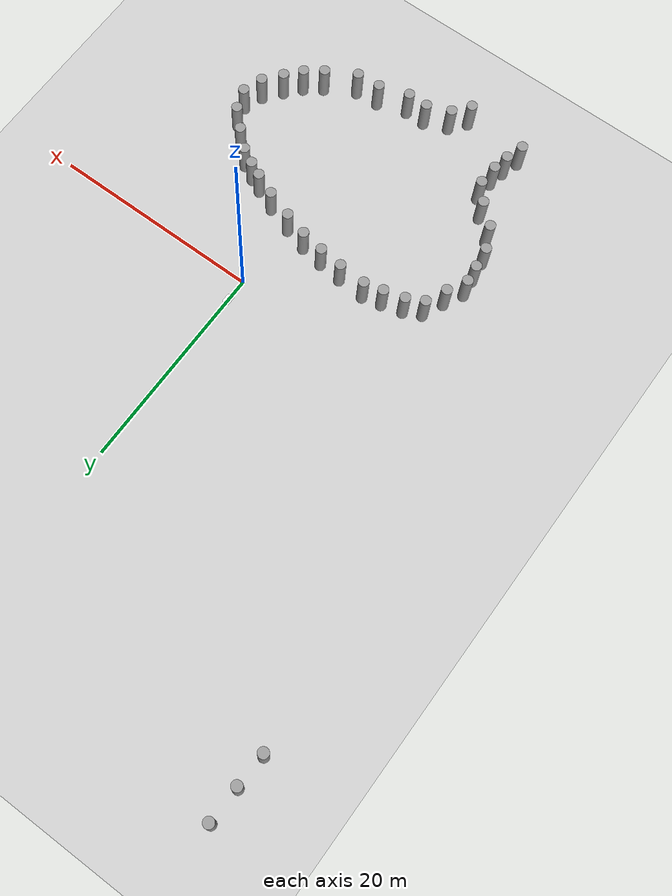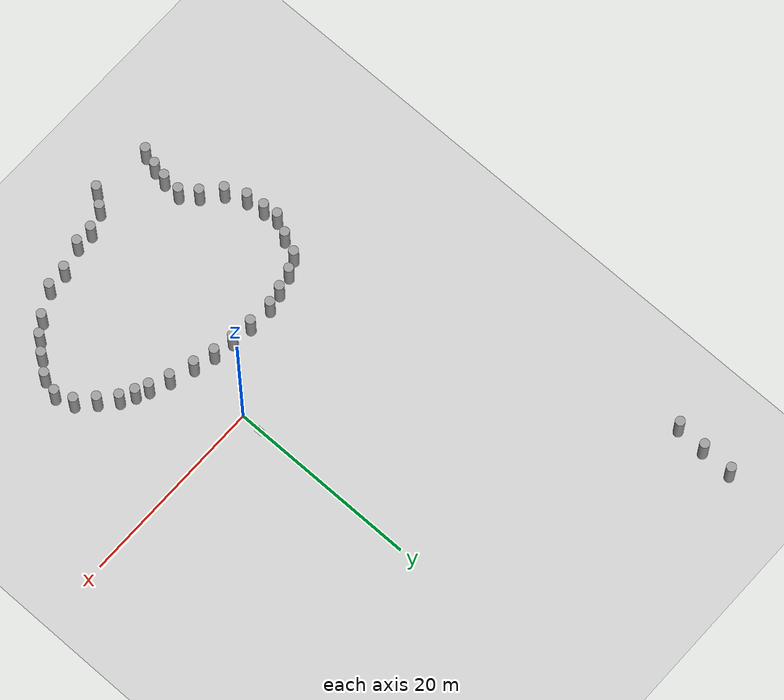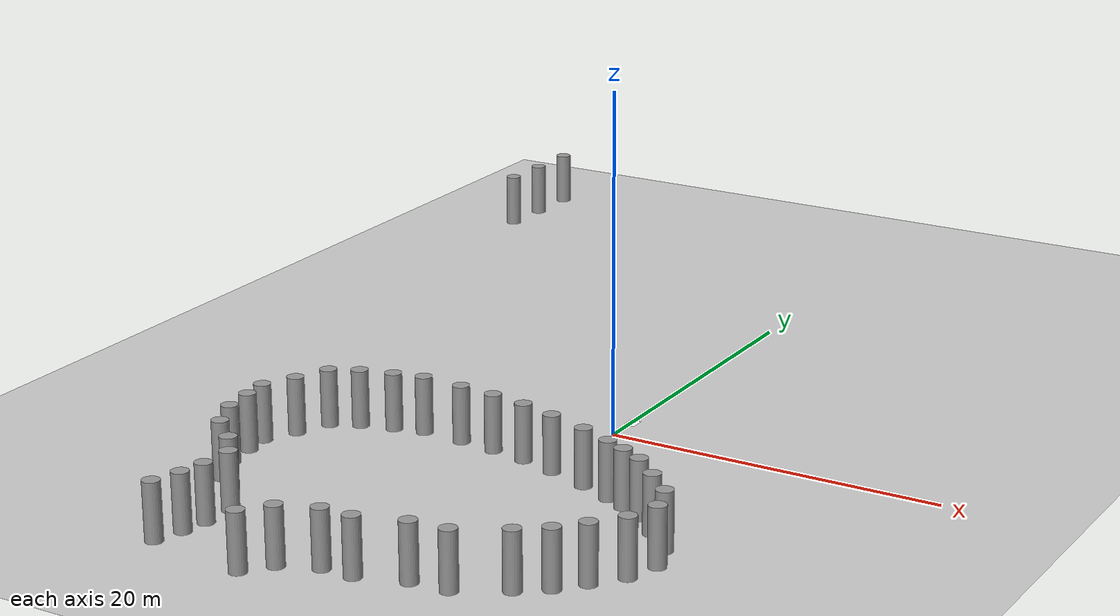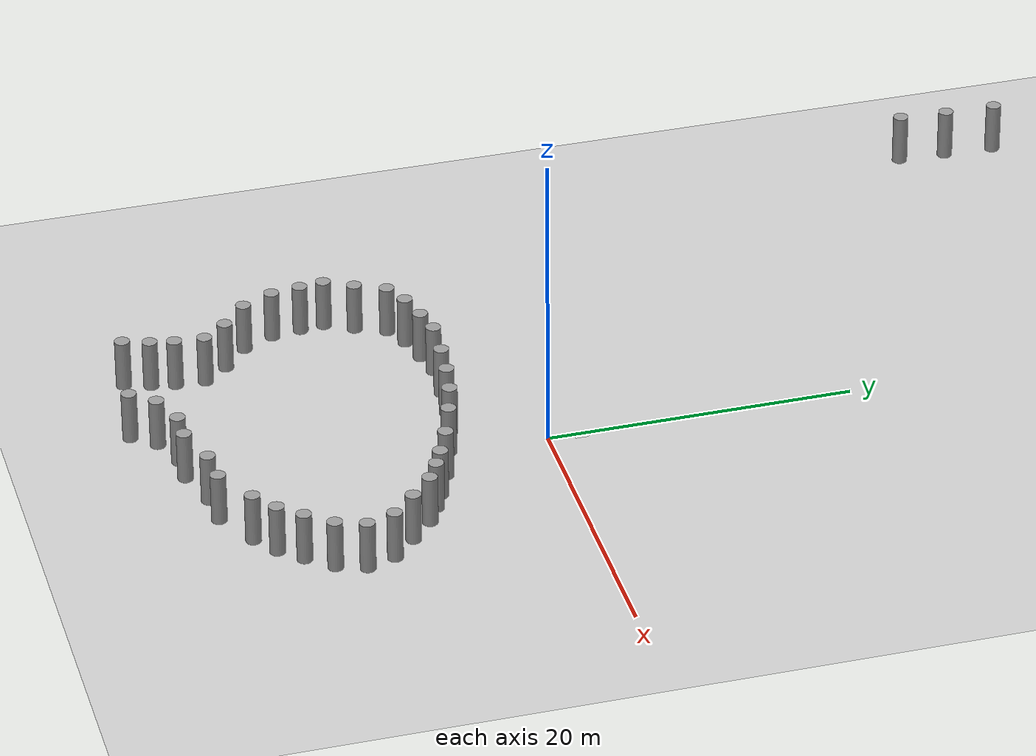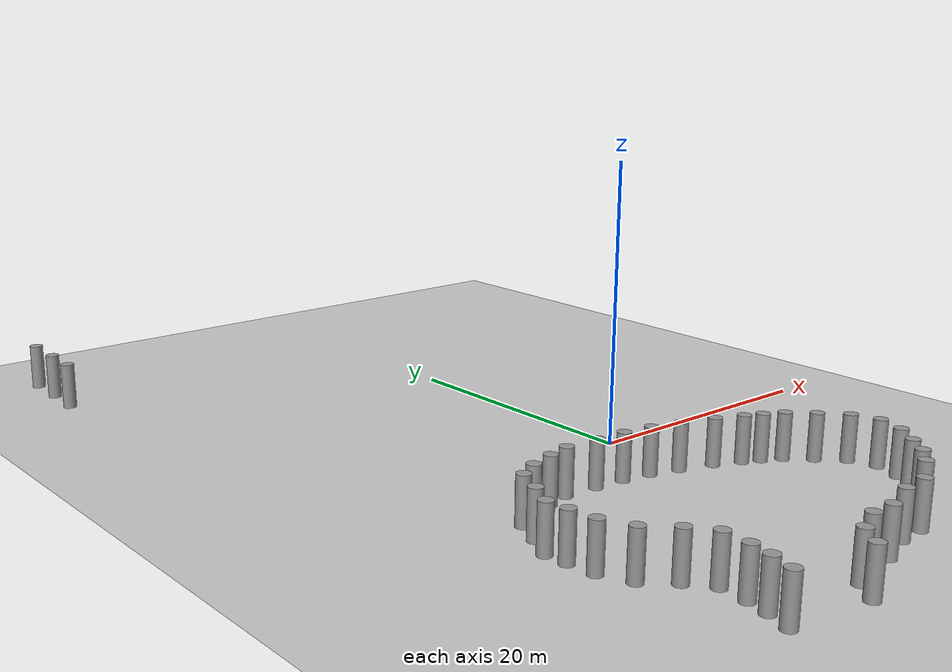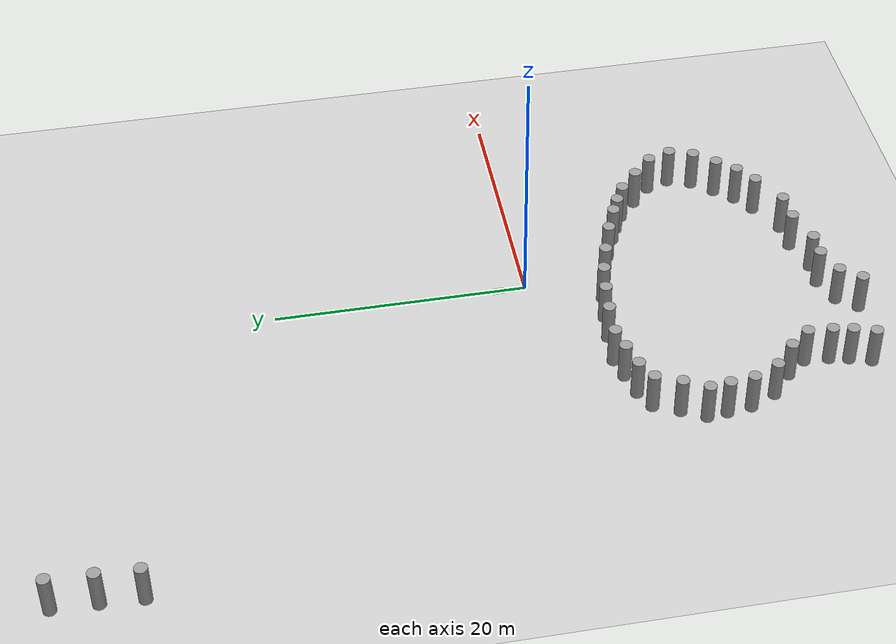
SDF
<sdf version="1.7">
 <world name="default">
  <model name="ground_plane">
   <static>1</static>
   <link name="link">
    <collision name="collision">
     <geometry><plane><normal>0 0 1</normal><size>100 100</size></plane></geometry>
     <surface>
      <contact><collide_bitmask>65535</collide_bitmask></contact>
      <friction><ode><mu>100</mu><mu2>50</mu2></ode></friction>
     </surface>
    </collision>
    <visual name="visual">
     <cast_shadows>0</cast_shadows>
     <geometry><plane><normal>0 0 1</normal><size>100 100</size></plane></geometry>
     <material>
      <script><uri>file://media/materials/scripts/gazebo.material</uri><name>Gazebo/Grey</name></script>
     </material>
    </visual>
   </link>
  </model>
  <model name="aruco_default">
   <static>1</static>
   <link name="aruco_link">
    <visual name="aruco_visual">
     <geometry><plane><normal>0 0 1</normal><size>0.68 0.9</size></plane></geometry>
     <material>
      <diffuse>1 1 1 1</diffuse>
      <specular>0.4 0.4 0.4 1</specular>
      <pbr><metal><albedo_map>materials/textures/pattern.png</albedo_map></metal></pbr>
     </material>
    </visual>
   </link>
   <pose>0.057366 2.14573 0 0 -0 0</pose>
  </model>
  <model name="unit_cylinder_clone_0_clone_33">
   <pose>-13.1083 -24.5379 1.7077 0 -0 -6e-06</pose>
   <link name="link">
    <inertial>
     <mass>1</mass>
     <inertia><ixx>0.145833</ixx><ixy>0</ixy><ixz>0</ixz><iyy>0.145833</iyy><iyz>0</iyz><izz>0.125</izz></inertia>
    </inertial>
    <collision name="collision">
     <geometry><cylinder><radius>0.5</radius><length>3.4154</length></cylinder></geometry>
    </collision>
    <visual name="visual">
     <geometry><cylinder><radius>0.5</radius><length>3.4154</length></cylinder></geometry>
     <material>
      <script><name>Gazebo/Grey</name><uri>file://media/materials/scripts/gazebo.material</uri></script>
     </material>
    </visual>
   </link>
  </model>
  <model name="unit_cylinder_clone_0_clone_34">
   <pose>-12.5767 -22.8633 1.7077 -0 -0 -0.001812</pose>
   <link name="link">
    <inertial>
     <mass>1</mass>
     <inertia><ixx>0.145833</ixx><ixy>0</ixy><ixz>0</ixz><iyy>0.145833</iyy><iyz>0</iyz><izz>0.125</izz></inertia>
    </inertial>
    <collision name="collision">
     <geometry><cylinder><radius>0.5</radius><length>3.4154</length></cylinder></geometry>
    </collision>
    <visual name="visual">
     <geometry><cylinder><radius>0.5</radius><length>3.4154</length></cylinder></geometry>
     <material>
      <script><name>Gazebo/Grey</name><uri>file://media/materials/scripts/gazebo.material</uri></script>
     </material>
    </visual>
   </link>
  </model>
  <model name="unit_cylinder_clone_0_clone_36">
   <pose>-7.09432 -25.3866 1.7077 0 -0 1e-06</pose>
   <link name="link">
    <inertial>
     <mass>1</mass>
     <inertia><ixx>0.145833</ixx><ixy>0</ixy><ixz>0</ixz><iyy>0.145833</iyy><iyz>0</iyz><izz>0.125</izz></inertia>
    </inertial>
    <collision name="collision">
     <geometry><cylinder><radius>0.5</radius><length>3.4154</length></cylinder></geometry>
    </collision>
    <visual name="visual">
     <geometry><cylinder><radius>0.5</radius><length>3.4154</length></cylinder></geometry>
     <material>
      <script><name>Gazebo/Grey</name><uri>file://media/materials/scripts/gazebo.material</uri></script>
     </material>
    </visual>
   </link>
  </model>
  <model name="unit_cylinder_clone_0_clone_37">
   <pose>-12.2662 -21.3267 1.7077 0 -0 9e-06</pose>
   <link name="link">
    <inertial>
     <mass>1</mass>
     <inertia><ixx>0.145833</ixx><ixy>0</ixy><ixz>0</ixz><iyy>0.145833</iyy><iyz>0</iyz><izz>0.125</izz></inertia>
    </inertial>
    <collision name="collision">
     <geometry><cylinder><radius>0.5</radius><length>3.4154</length></cylinder></geometry>
    </collision>
    <visual name="visual">
     <geometry><cylinder><radius>0.5</radius><length>3.4154</length></cylinder></geometry>
     <material>
      <script><name>Gazebo/Grey</name><uri>file://media/materials/scripts/gazebo.material</uri></script>
     </material>
    </visual>
   </link>
  </model>
  <model name="unit_cylinder_clone_0_clone_38">
   <pose>-5.87449 -23.8777 1.7077 0 -0 1e-06</pose>
   <link name="link">
    <inertial>
     <mass>1</mass>
     <inertia><ixx>0.145833</ixx><ixy>0</ixy><ixz>0</ixz><iyy>0.145833</iyy><iyz>0</iyz><izz>0.125</izz></inertia>
    </inertial>
    <collision name="collision">
     <geometry><cylinder><radius>0.5</radius><length>3.4154</length></cylinder></geometry>
    </collision>
    <visual name="visual">
     <geometry><cylinder><radius>0.5</radius><length>3.4154</length></cylinder></geometry>
     <material>
      <script><name>Gazebo/Grey</name><uri>file://media/materials/scripts/gazebo.material</uri></script>
     </material>
    </visual>
   </link>
  </model>
  <model name="unit_cylinder_clone_0_clone_39">
   <pose>-12.1496 -19.3923 1.7077 0 -0 -6e-06</pose>
   <link name="link">
    <inertial>
     <mass>1</mass>
     <inertia><ixx>0.145833</ixx><ixy>0</ixy><ixz>0</ixz><iyy>0.145833</iyy><iyz>0</iyz><izz>0.125</izz></inertia>
    </inertial>
    <collision name="collision">
     <geometry><cylinder><radius>0.5</radius><length>3.4154</length></cylinder></geometry>
    </collision>
    <visual name="visual">
     <geometry><cylinder><radius>0.5</radius><length>3.4154</length></cylinder></geometry>
     <material>
      <script><name>Gazebo/Grey</name><uri>file://media/materials/scripts/gazebo.material</uri></script>
     </material>
    </visual>
   </link>
  </model>
  <model name="unit_cylinder_clone_0_clone_40">
   <pose>-3.69066 -22.991 1.7077 0 -0 -9e-06</pose>
   <link name="link">
    <inertial>
     <mass>1</mass>
     <inertia><ixx>0.145833</ixx><ixy>0</ixy><ixz>0</ixz><iyy>0.145833</iyy><iyz>0</iyz><izz>0.125</izz></inertia>
    </inertial>
    <collision name="collision">
     <geometry><cylinder><radius>0.5</radius><length>3.4154</length></cylinder></geometry>
    </collision>
    <visual name="visual">
     <geometry><cylinder><radius>0.5</radius><length>3.4154</length></cylinder></geometry>
     <material>
      <script><name>Gazebo/Grey</name><uri>file://media/materials/scripts/gazebo.material</uri></script>
     </material>
    </visual>
   </link>
  </model>
  <model name="unit_cylinder_clone_0_clone_41">
   <pose>-1.78616 -23.0066 1.7077 0 -0 4e-06</pose>
   <link name="link">
    <inertial>
     <mass>1</mass>
     <inertia><ixx>0.145833</ixx><ixy>0</ixy><ixz>0</ixz><iyy>0.145833</iyy><iyz>0</iyz><izz>0.125</izz></inertia>
    </inertial>
    <collision name="collision">
     <geometry><cylinder><radius>0.5</radius><length>3.4154</length></cylinder></geometry>
    </collision>
    <visual name="visual">
     <geometry><cylinder><radius>0.5</radius><length>3.4154</length></cylinder></geometry>
     <material>
      <script><name>Gazebo/Grey</name><uri>file://media/materials/scripts/gazebo.material</uri></script>
     </material>
    </visual>
   </link>
  </model>
  <model name="unit_cylinder_clone_0_clone_42">
   <pose>0.987367 -22.1201 1.7077 0 -0 1e-06</pose>
   <link name="link">
    <inertial>
     <mass>1</mass>
     <inertia><ixx>0.145833</ixx><ixy>0</ixy><ixz>0</ixz><iyy>0.145833</iyy><iyz>0</iyz><izz>0.125</izz></inertia>
    </inertial>
    <collision name="collision">
     <geometry><cylinder><radius>0.5</radius><length>3.4154</length></cylinder></geometry>
    </collision>
    <visual name="visual">
     <geometry><cylinder><radius>0.5</radius><length>3.4154</length></cylinder></geometry>
     <material>
      <script><name>Gazebo/Grey</name><uri>file://media/materials/scripts/gazebo.material</uri></script>
     </material>
    </visual>
   </link>
  </model>
  <model name="unit_cylinder_clone_0_clone_43">
   <pose>-13.3909 -17.7902 1.7077 0 -0 9e-06</pose>
   <link name="link">
    <inertial>
     <mass>1</mass>
     <inertia><ixx>0.145833</ixx><ixy>0</ixy><ixz>0</ixz><iyy>0.145833</iyy><iyz>0</iyz><izz>0.125</izz></inertia>
    </inertial>
    <collision name="collision">
     <geometry><cylinder><radius>0.5</radius><length>3.4154</length></cylinder></geometry>
    </collision>
    <visual name="visual">
     <geometry><cylinder><radius>0.5</radius><length>3.4154</length></cylinder></geometry>
     <material>
      <script><name>Gazebo/Grey</name><uri>file://media/materials/scripts/gazebo.material</uri></script>
     </material>
    </visual>
   </link>
  </model>
  <model name="unit_cylinder_clone_0_clone_44">
   <pose>-15.1916 -16.1591 1.7077 0 -0 6e-06</pose>
   <link name="link">
    <inertial>
     <mass>1</mass>
     <inertia><ixx>0.145833</ixx><ixy>0</ixy><ixz>0</ixz><iyy>0.145833</iyy><iyz>0</iyz><izz>0.125</izz></inertia>
    </inertial>
    <collision name="collision">
     <geometry><cylinder><radius>0.5</radius><length>3.4154</length></cylinder></geometry>
    </collision>
    <visual name="visual">
     <geometry><cylinder><radius>0.5</radius><length>3.4154</length></cylinder></geometry>
     <material>
      <script><name>Gazebo/Grey</name><uri>file://media/materials/scripts/gazebo.material</uri></script>
     </material>
    </visual>
   </link>
  </model>
  <model name="unit_cylinder_clone_0_clone_45">
   <pose>-16.1365 -14.0923 1.7077 0 -0 1e-05</pose>
   <link name="link">
    <inertial>
     <mass>1</mass>
     <inertia><ixx>0.145833</ixx><ixy>0</ixy><ixz>0</ixz><iyy>0.145833</iyy><iyz>0</iyz><izz>0.125</izz></inertia>
    </inertial>
    <collision name="collision">
     <geometry><cylinder><radius>0.5</radius><length>3.4154</length></cylinder></geometry>
    </collision>
    <visual name="visual">
     <geometry><cylinder><radius>0.5</radius><length>3.4154</length></cylinder></geometry>
     <material>
      <script><name>Gazebo/Grey</name><uri>file://media/materials/scripts/gazebo.material</uri></script>
     </material>
    </visual>
   </link>
  </model>
  <model name="unit_cylinder_clone_0_clone_46">
   <pose>-16.3959 -12.1554 1.7077 0 -0 -1e-05</pose>
   <link name="link">
    <inertial>
     <mass>1</mass>
     <inertia><ixx>0.145833</ixx><ixy>0</ixy><ixz>0</ixz><iyy>0.145833</iyy><iyz>0</iyz><izz>0.125</izz></inertia>
    </inertial>
    <collision name="collision">
     <geometry><cylinder><radius>0.5</radius><length>3.4154</length></cylinder></geometry>
    </collision>
    <visual name="visual">
     <geometry><cylinder><radius>0.5</radius><length>3.4154</length></cylinder></geometry>
     <material>
      <script><name>Gazebo/Grey</name><uri>file://media/materials/scripts/gazebo.material</uri></script>
     </material>
    </visual>
   </link>
  </model>
  <model name="unit_cylinder_clone_0_clone_47">
   <pose>-16.5689 -10.5585 1.7077 0 -0 -9e-06</pose>
   <link name="link">
    <inertial>
     <mass>1</mass>
     <inertia><ixx>0.145833</ixx><ixy>0</ixy><ixz>0</ixz><iyy>0.145833</iyy><iyz>0</iyz><izz>0.125</izz></inertia>
    </inertial>
    <collision name="collision">
     <geometry><cylinder><radius>0.5</radius><length>3.4154</length></cylinder></geometry>
    </collision>
    <visual name="visual">
     <geometry><cylinder><radius>0.5</radius><length>3.4154</length></cylinder></geometry>
     <material>
      <script><name>Gazebo/Grey</name><uri>file://media/materials/scripts/gazebo.material</uri></script>
     </material>
    </visual>
   </link>
  </model>
  <model name="unit_cylinder_clone_0_clone_48">
   <pose>-15.6165 -8.73278 1.7077 0 -0 -8e-06</pose>
   <link name="link">
    <inertial>
     <mass>1</mass>
     <inertia><ixx>0.145833</ixx><ixy>0</ixy><ixz>0</ixz><iyy>0.145833</iyy><iyz>0</iyz><izz>0.125</izz></inertia>
    </inertial>
    <collision name="collision">
     <geometry><cylinder><radius>0.5</radius><length>3.4154</length></cylinder></geometry>
    </collision>
    <visual name="visual">
     <geometry><cylinder><radius>0.5</radius><length>3.4154</length></cylinder></geometry>
     <material>
      <script><name>Gazebo/Grey</name><uri>file://media/materials/scripts/gazebo.material</uri></script>
     </material>
    </visual>
   </link>
  </model>
  <model name="unit_cylinder_clone_0_clone_49">
   <pose>3.22405 -21.9689 1.7077 0 -0 -6e-06</pose>
   <link name="link">
    <inertial>
     <mass>1</mass>
     <inertia><ixx>0.145833</ixx><ixy>0</ixy><ixz>0</ixz><iyy>0.145833</iyy><iyz>0</iyz><izz>0.125</izz></inertia>
    </inertial>
    <collision name="collision">
     <geometry><cylinder><radius>0.5</radius><length>3.4154</length></cylinder></geometry>
    </collision>
    <visual name="visual">
     <geometry><cylinder><radius>0.5</radius><length>3.4154</length></cylinder></geometry>
     <material>
      <script><name>Gazebo/Grey</name><uri>file://media/materials/scripts/gazebo.material</uri></script>
     </material>
    </visual>
   </link>
  </model>
  <model name="unit_cylinder_clone_0_clone_50">
   <pose>5.93469 -20.4274 1.7077 0 -0 1e-06</pose>
   <link name="link">
    <inertial>
     <mass>1</mass>
     <inertia><ixx>0.145833</ixx><ixy>0</ixy><ixz>0</ixz><iyy>0.145833</iyy><iyz>0</iyz><izz>0.125</izz></inertia>
    </inertial>
    <collision name="collision">
     <geometry><cylinder><radius>0.5</radius><length>3.4154</length></cylinder></geometry>
    </collision>
    <visual name="visual">
     <geometry><cylinder><radius>0.5</radius><length>3.4154</length></cylinder></geometry>
     <material>
      <script><name>Gazebo/Grey</name><uri>file://media/materials/scripts/gazebo.material</uri></script>
     </material>
    </visual>
   </link>
  </model>
  <model name="unit_cylinder_clone_0_clone_51">
   <pose>7.49589 -19.269 1.7077 0 -0 -6e-06</pose>
   <link name="link">
    <inertial>
     <mass>1</mass>
     <inertia><ixx>0.145833</ixx><ixy>0</ixy><ixz>0</ixz><iyy>0.145833</iyy><iyz>0</iyz><izz>0.125</izz></inertia>
    </inertial>
    <collision name="collision">
     <geometry><cylinder><radius>0.5</radius><length>3.4154</length></cylinder></geometry>
    </collision>
    <visual name="visual">
     <geometry><cylinder><radius>0.5</radius><length>3.4154</length></cylinder></geometry>
     <material>
      <script><name>Gazebo/Grey</name><uri>file://media/materials/scripts/gazebo.material</uri></script>
     </material>
    </visual>
   </link>
  </model>
  <model name="unit_cylinder_clone_0_clone_52">
   <pose>8.7415 -17.8501 1.7077 0 -0 9e-06</pose>
   <link name="link">
    <inertial>
     <mass>1</mass>
     <inertia><ixx>0.145833</ixx><ixy>0</ixy><ixz>0</ixz><iyy>0.145833</iyy><iyz>0</iyz><izz>0.125</izz></inertia>
    </inertial>
    <collision name="collision">
     <geometry><cylinder><radius>0.5</radius><length>3.4154</length></cylinder></geometry>
    </collision>
    <visual name="visual">
     <geometry><cylinder><radius>0.5</radius><length>3.4154</length></cylinder></geometry>
     <material>
      <script><name>Gazebo/Grey</name><uri>file://media/materials/scripts/gazebo.material</uri></script>
     </material>
    </visual>
   </link>
  </model>
  <model name="unit_cylinder_clone_0_clone_53">
   <pose>10.0501 -16.2276 1.7077 0 -0 6e-06</pose>
   <link name="link">
    <inertial>
     <mass>1</mass>
     <inertia><ixx>0.145833</ixx><ixy>0</ixy><ixz>0</ixz><iyy>0.145833</iyy><iyz>0</iyz><izz>0.125</izz></inertia>
    </inertial>
    <collision name="collision">
     <geometry><cylinder><radius>0.5</radius><length>3.4154</length></cylinder></geometry>
    </collision>
    <visual name="visual">
     <geometry><cylinder><radius>0.5</radius><length>3.4154</length></cylinder></geometry>
     <material>
      <script><name>Gazebo/Grey</name><uri>file://media/materials/scripts/gazebo.material</uri></script>
     </material>
    </visual>
   </link>
  </model>
  <model name="unit_cylinder_clone_0_clone_54">
   <pose>10.6912 -14.3447 1.7077 0 -0 -1e-06</pose>
   <link name="link">
    <inertial>
     <mass>1</mass>
     <inertia><ixx>0.145833</ixx><ixy>0</ixy><ixz>0</ixz><iyy>0.145833</iyy><iyz>0</iyz><izz>0.125</izz></inertia>
    </inertial>
    <collision name="collision">
     <geometry><cylinder><radius>0.5</radius><length>3.4154</length></cylinder></geometry>
    </collision>
    <visual name="visual">
     <geometry><cylinder><radius>0.5</radius><length>3.4154</length></cylinder></geometry>
     <material>
      <script><name>Gazebo/Grey</name><uri>file://media/materials/scripts/gazebo.material</uri></script>
     </material>
    </visual>
   </link>
  </model>
  <model name="unit_cylinder_clone_0_clone_55">
   <pose>10.0635 -12.4691 1.7077 0 -0 -2e-06</pose>
   <link name="link">
    <inertial>
     <mass>1</mass>
     <inertia><ixx>0.145833</ixx><ixy>0</ixy><ixz>0</ixz><iyy>0.145833</iyy><iyz>0</iyz><izz>0.125</izz></inertia>
    </inertial>
    <collision name="collision">
     <geometry><cylinder><radius>0.5</radius><length>3.4154</length></cylinder></geometry>
    </collision>
    <visual name="visual">
     <geometry><cylinder><radius>0.5</radius><length>3.4154</length></cylinder></geometry>
     <material>
      <script><name>Gazebo/Grey</name><uri>file://media/materials/scripts/gazebo.material</uri></script>
     </material>
    </visual>
   </link>
  </model>
  <model name="unit_cylinder_clone_0_clone_56">
   <pose>8.49972 -10.9151 1.7077 0 -0 5e-06</pose>
   <link name="link">
    <inertial>
     <mass>1</mass>
     <inertia><ixx>0.145833</ixx><ixy>0</ixy><ixz>0</ixz><iyy>0.145833</iyy><iyz>0</iyz><izz>0.125</izz></inertia>
    </inertial>
    <collision name="collision">
     <geometry><cylinder><radius>0.5</radius><length>3.4154</length></cylinder></geometry>
    </collision>
    <visual name="visual">
     <geometry><cylinder><radius>0.5</radius><length>3.4154</length></cylinder></geometry>
     <material>
      <script><name>Gazebo/Grey</name><uri>file://media/materials/scripts/gazebo.material</uri></script>
     </material>
    </visual>
   </link>
  </model>
  <model name="unit_cylinder_clone_0_clone_57">
   <pose>6.92818 -9.46304 1.7077 0 -0 -5e-06</pose>
   <link name="link">
    <inertial>
     <mass>1</mass>
     <inertia><ixx>0.145833</ixx><ixy>0</ixy><ixz>0</ixz><iyy>0.145833</iyy><iyz>0</iyz><izz>0.125</izz></inertia>
    </inertial>
    <collision name="collision">
     <geometry><cylinder><radius>0.5</radius><length>3.4154</length></cylinder></geometry>
    </collision>
    <visual name="visual">
     <geometry><cylinder><radius>0.5</radius><length>3.4154</length></cylinder></geometry>
     <material>
      <script><name>Gazebo/Grey</name><uri>file://media/materials/scripts/gazebo.material</uri></script>
     </material>
    </visual>
   </link>
  </model>
  <model name="unit_cylinder_clone_0_clone_58">
   <pose>-14.7328 -6.78153 1.7077 0 -0 -4e-06</pose>
   <link name="link">
    <inertial>
     <mass>1</mass>
     <inertia><ixx>0.145833</ixx><ixy>0</ixy><ixz>0</ixz><iyy>0.145833</iyy><iyz>0</iyz><izz>0.125</izz></inertia>
    </inertial>
    <collision name="collision">
     <geometry><cylinder><radius>0.5</radius><length>3.4154</length></cylinder></geometry>
    </collision>
    <visual name="visual">
     <geometry><cylinder><radius>0.5</radius><length>3.4154</length></cylinder></geometry>
     <material>
      <script><name>Gazebo/Grey</name><uri>file://media/materials/scripts/gazebo.material</uri></script>
     </material>
    </visual>
   </link>
  </model>
  <model name="unit_cylinder_clone_0_clone_59">
   <pose>-13.1482 -5.97424 1.7077 0 -0 -8e-06</pose>
   <link name="link">
    <inertial>
     <mass>1</mass>
     <inertia><ixx>0.145833</ixx><ixy>0</ixy><ixz>0</ixz><iyy>0.145833</iyy><iyz>0</iyz><izz>0.125</izz></inertia>
    </inertial>
    <collision name="collision">
     <geometry><cylinder><radius>0.5</radius><length>3.4154</length></cylinder></geometry>
    </collision>
    <visual name="visual">
     <geometry><cylinder><radius>0.5</radius><length>3.4154</length></cylinder></geometry>
     <material>
      <script><name>Gazebo/Grey</name><uri>file://media/materials/scripts/gazebo.material</uri></script>
     </material>
    </visual>
   </link>
  </model>
  <model name="unit_cylinder_clone_0_clone_60">
   <pose>-11.2097 -5.44102 1.7077 0 -0 -4e-06</pose>
   <link name="link">
    <inertial>
     <mass>1</mass>
     <inertia><ixx>0.145833</ixx><ixy>0</ixy><ixz>0</ixz><iyy>0.145833</iyy><iyz>0</iyz><izz>0.125</izz></inertia>
    </inertial>
    <collision name="collision">
     <geometry><cylinder><radius>0.5</radius><length>3.4154</length></cylinder></geometry>
    </collision>
    <visual name="visual">
     <geometry><cylinder><radius>0.5</radius><length>3.4154</length></cylinder></geometry>
     <material>
      <script><name>Gazebo/Grey</name><uri>file://media/materials/scripts/gazebo.material</uri></script>
     </material>
    </visual>
   </link>
  </model>
  <model name="unit_cylinder_clone_0_clone_61">
   <pose>-9.41878 -5.0312 1.7077 0 -0 -4e-06</pose>
   <link name="link">
    <inertial>
     <mass>1</mass>
     <inertia><ixx>0.145833</ixx><ixy>0</ixy><ixz>0</ixz><iyy>0.145833</iyy><iyz>0</iyz><izz>0.125</izz></inertia>
    </inertial>
    <collision name="collision">
     <geometry><cylinder><radius>0.5</radius><length>3.4154</length></cylinder></geometry>
    </collision>
    <visual name="visual">
     <geometry><cylinder><radius>0.5</radius><length>3.4154</length></cylinder></geometry>
     <material>
      <script><name>Gazebo/Grey</name><uri>file://media/materials/scripts/gazebo.material</uri></script>
     </material>
    </visual>
   </link>
  </model>
  <model name="unit_cylinder_clone_0_clone_62">
   <pose>-6.82545 -5.18358 1.7077 0 -0 -1e-06</pose>
   <link name="link">
    <inertial>
     <mass>1</mass>
     <inertia><ixx>0.145833</ixx><ixy>0</ixy><ixz>0</ixz><iyy>0.145833</iyy><iyz>0</iyz><izz>0.125</izz></inertia>
    </inertial>
    <collision name="collision">
     <geometry><cylinder><radius>0.5</radius><length>3.4154</length></cylinder></geometry>
    </collision>
    <visual name="visual">
     <geometry><cylinder><radius>0.5</radius><length>3.4154</length></cylinder></geometry>
     <material>
      <script><name>Gazebo/Grey</name><uri>file://media/materials/scripts/gazebo.material</uri></script>
     </material>
    </visual>
   </link>
  </model>
  <model name="unit_cylinder_clone_0_clone_63">
   <pose>-4.57364 -5.42276 1.7077 0 -0 -4e-06</pose>
   <link name="link">
    <inertial>
     <mass>1</mass>
     <inertia><ixx>0.145833</ixx><ixy>0</ixy><ixz>0</ixz><iyy>0.145833</iyy><iyz>0</iyz><izz>0.125</izz></inertia>
    </inertial>
    <collision name="collision">
     <geometry><cylinder><radius>0.5</radius><length>3.4154</length></cylinder></geometry>
    </collision>
    <visual name="visual">
     <geometry><cylinder><radius>0.5</radius><length>3.4154</length></cylinder></geometry>
     <material>
      <script><name>Gazebo/Grey</name><uri>file://media/materials/scripts/gazebo.material</uri></script>
     </material>
    </visual>
   </link>
  </model>
  <model name="unit_cylinder_clone_0_clone_64">
   <pose>-2.37185 -5.79405 1.7077 0 -0 6e-06</pose>
   <link name="link">
    <inertial>
     <mass>1</mass>
     <inertia><ixx>0.145833</ixx><ixy>0</ixy><ixz>0</ixz><iyy>0.145833</iyy><iyz>0</iyz><izz>0.125</izz></inertia>
    </inertial>
    <collision name="collision">
     <geometry><cylinder><radius>0.5</radius><length>3.4154</length></cylinder></geometry>
    </collision>
    <visual name="visual">
     <geometry><cylinder><radius>0.5</radius><length>3.4154</length></cylinder></geometry>
     <material>
      <script><name>Gazebo/Grey</name><uri>file://media/materials/scripts/gazebo.material</uri></script>
     </material>
    </visual>
   </link>
  </model>
  <model name="unit_cylinder_clone_0_clone_65">
   <pose>-0.181342 -6.42753 1.7077 0 -0 1.1e-05</pose>
   <link name="link">
    <inertial>
     <mass>1</mass>
     <inertia><ixx>0.145833</ixx><ixy>0</ixy><ixz>0</ixz><iyy>0.145833</iyy><iyz>0</iyz><izz>0.125</izz></inertia>
    </inertial>
    <collision name="collision">
     <geometry><cylinder><radius>0.5</radius><length>3.4154</length></cylinder></geometry>
    </collision>
    <visual name="visual">
     <geometry><cylinder><radius>0.5</radius><length>3.4154</length></cylinder></geometry>
     <material>
      <script><name>Gazebo/Grey</name><uri>file://media/materials/scripts/gazebo.material</uri></script>
     </material>
    </visual>
   </link>
  </model>
  <model name="unit_cylinder_clone_0_clone_66">
   <pose>2.29234 -7.25771 1.7077 0 -0 6e-06</pose>
   <link name="link">
    <inertial>
     <mass>1</mass>
     <inertia><ixx>0.145833</ixx><ixy>0</ixy><ixz>0</ixz><iyy>0.145833</iyy><iyz>0</iyz><izz>0.125</izz></inertia>
    </inertial>
    <collision name="collision">
     <geometry><cylinder><radius>0.5</radius><length>3.4154</length></cylinder></geometry>
    </collision>
    <visual name="visual">
     <geometry><cylinder><radius>0.5</radius><length>3.4154</length></cylinder></geometry>
     <material>
      <script><name>Gazebo/Grey</name><uri>file://media/materials/scripts/gazebo.material</uri></script>
     </material>
    </visual>
   </link>
  </model>
  <model name="unit_cylinder_clone_0_clone_67">
   <pose>4.27929 -8.10995 1.7077 0 -0 -2e-06</pose>
   <link name="link">
    <inertial>
     <mass>1</mass>
     <inertia><ixx>0.145833</ixx><ixy>0</ixy><ixz>0</ixz><iyy>0.145833</iyy><iyz>0</iyz><izz>0.125</izz></inertia>
    </inertial>
    <collision name="collision">
     <geometry><cylinder><radius>0.5</radius><length>3.4154</length></cylinder></geometry>
    </collision>
    <visual name="visual">
     <geometry><cylinder><radius>0.5</radius><length>3.4154</length></cylinder></geometry>
     <material>
      <script><name>Gazebo/Grey</name><uri>file://media/materials/scripts/gazebo.material</uri></script>
     </material>
    </visual>
   </link>
  </model>
  <model name="unit_cylinder_clone_0_clone_68">
   <pose>5.54015 -8.70017 1.7077 0 -0 -1.1e-05</pose>
   <link name="link">
    <inertial>
     <mass>1</mass>
     <inertia><ixx>0.145833</ixx><ixy>0</ixy><ixz>0</ixz><iyy>0.145833</iyy><iyz>0</iyz><izz>0.125</izz></inertia>
    </inertial>
    <collision name="collision">
     <geometry><cylinder><radius>0.5</radius><length>3.4154</length></cylinder></geometry>
    </collision>
    <visual name="visual">
     <geometry><cylinder><radius>0.5</radius><length>3.4154</length></cylinder></geometry>
     <material>
      <script><name>Gazebo/Grey</name><uri>file://media/materials/scripts/gazebo.material</uri></script>
     </material>
    </visual>
   </link>
  </model>
  <model name="unit_cylinder_clone_0_clone_59_clone">
   <pose>-26.076 35.0591 1.7077 0 -0 3e-06</pose>
   <link name="link">
    <inertial>
     <mass>1</mass>
     <inertia><ixx>0.145833</ixx><ixy>0</ixy><ixz>0</ixz><iyy>0.145833</iyy><iyz>0</iyz><izz>0.125</izz></inertia>
    </inertial>
    <collision name="collision">
     <geometry><cylinder><radius>0.5</radius><length>3.4154</length></cylinder></geometry>
    </collision>
    <visual name="visual">
     <geometry><cylinder><radius>0.5</radius><length>3.4154</length></cylinder></geometry>
     <material>
      <script><name>Gazebo/Grey</name><uri>file://media/materials/scripts/gazebo.material</uri></script>
     </material>
    </visual>
   </link>
  </model>
  <model name="unit_cylinder_clone_0_clone_59_clone_clone">
   <pose>-26.2266 31.9009 1.7077 0 -0 4e-06</pose>
   <link name="link">
    <inertial>
     <mass>1</mass>
     <inertia><ixx>0.145833</ixx><ixy>0</ixy><ixz>0</ixz><iyy>0.145833</iyy><iyz>0</iyz><izz>0.125</izz></inertia>
    </inertial>
    <collision name="collision">
     <geometry><cylinder><radius>0.5</radius><length>3.4154</length></cylinder></geometry>
    </collision>
    <visual name="visual">
     <geometry><cylinder><radius>0.5</radius><length>3.4154</length></cylinder></geometry>
     <material>
      <script><name>Gazebo/Grey</name><uri>file://media/materials/scripts/gazebo.material</uri></script>
     </material>
    </visual>
   </link>
  </model>
  <model name="unit_cylinder_clone_0_clone_59_clone_clone_0">
   <pose>-25.9839 38.4317 1.7077 0 -0 3e-06</pose>
   <link name="link">
    <inertial>
     <mass>1</mass>
     <inertia><ixx>0.145833</ixx><ixy>0</ixy><ixz>0</ixz><iyy>0.145833</iyy><iyz>0</iyz><izz>0.125</izz></inertia>
    </inertial>
    <collision name="collision">
     <geometry><cylinder><radius>0.5</radius><length>3.4154</length></cylinder></geometry>
    </collision>
    <visual name="visual">
     <geometry><cylinder><radius>0.5</radius><length>3.4154</length></cylinder></geometry>
     <material>
      <script><name>Gazebo/Grey</name><uri>file://media/materials/scripts/gazebo.material</uri></script>
     </material>
    </visual>
   </link>
  </model>
 </world>
</sdf>
